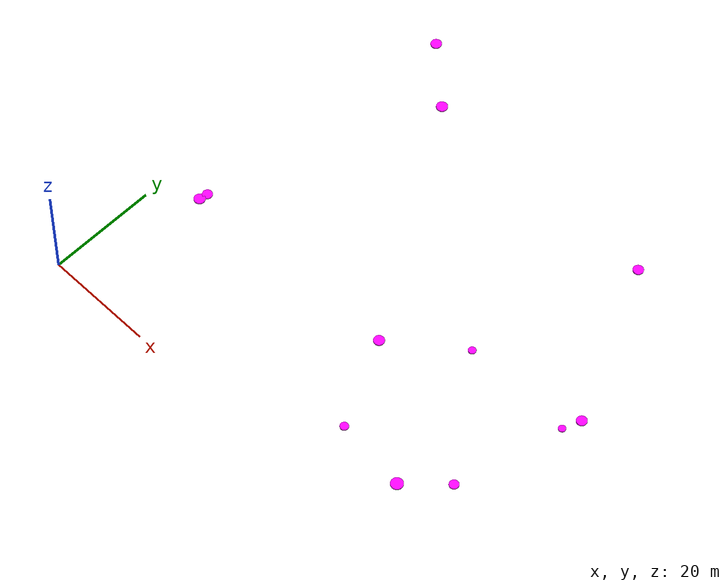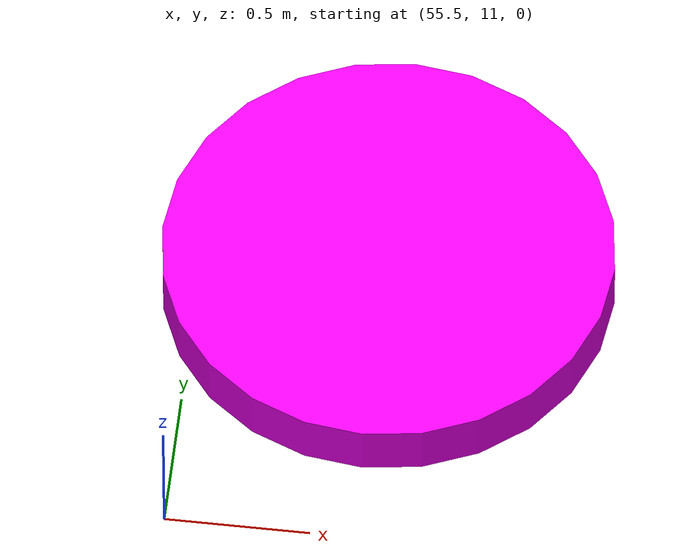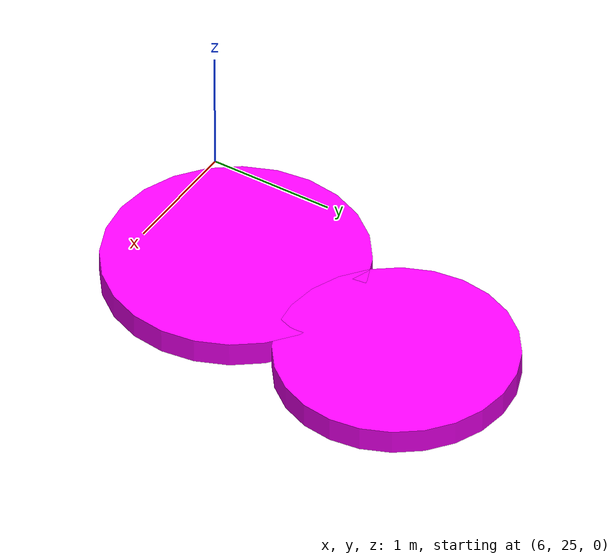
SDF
<?xml version="1.0"?>
<sdf version="1.9">
  <model name="weed_field">
    <static>true</static>
    <link name="weed_0">
      <pose>56.154 12.001 0.2 0 0 0</pose>
      <visual name="visual">
        <geometry>
          <cylinder>
            <radius>0.779</radius>
            <length>0.2</length>
          </cylinder>
        </geometry>
        <material>
          <ambient>1 0 1 1</ambient>
          <diffuse>1 0 1 1</diffuse>
          <emissive>1 0 1 1</emissive>
        </material>
      </visual>
    </link>
    <link name="weed_1">
      <pose>22.857 68.918 0.2 0 0 0</pose>
      <visual name="visual">
        <geometry>
          <cylinder>
            <radius>1.04</radius>
            <length>0.2</length>
          </cylinder>
        </geometry>
        <material>
          <ambient>1 0 1 1</ambient>
          <diffuse>1 0 1 1</diffuse>
          <emissive>1 0 1 1</emissive>
        </material>
      </visual>
    </link>
    <link name="weed_2">
      <pose>76.374 16.955 0.2 0 0 0</pose>
      <visual name="visual">
        <geometry>
          <cylinder>
            <radius>0.874</radius>
            <length>0.2</length>
          </cylinder>
        </geometry>
        <material>
          <ambient>1 0 1 1</ambient>
          <diffuse>1 0 1 1</diffuse>
          <emissive>1 0 1 1</emissive>
        </material>
      </visual>
    </link>
    <link name="weed_3">
      <pose>7.384 27.491 0.2 0 0 0</pose>
      <visual name="visual">
        <geometry>
          <cylinder>
            <radius>0.9285</radius>
            <length>0.2</length>
          </cylinder>
        </geometry>
        <material>
          <ambient>1 0 1 1</ambient>
          <diffuse>1 0 1 1</diffuse>
          <emissive>1 0 1 1</emissive>
        </material>
      </visual>
    </link>
    <link name="weed_4">
      <pose>7.123 25.907 0.2 0 0 0</pose>
      <visual name="visual">
        <geometry>
          <cylinder>
            <radius>1.0225</radius>
            <length>0.2</length>
          </cylinder>
        </geometry>
        <material>
          <ambient>1 0 1 1</ambient>
          <diffuse>1 0 1 1</diffuse>
          <emissive>1 0 1 1</emissive>
        </material>
      </visual>
    </link>
    <link name="weed_5">
      <pose>48.595 27.635 0.2 0 0 0</pose>
      <visual name="visual">
        <geometry>
          <cylinder>
            <radius>0.983</radius>
            <length>0.2</length>
          </cylinder>
        </geometry>
        <material>
          <ambient>1 0 1 1</ambient>
          <diffuse>1 0 1 1</diffuse>
          <emissive>1 0 1 1</emissive>
        </material>
      </visual>
    </link>
    <link name="weed_6">
      <pose>69.754 10.52 0.2 0 0 0</pose>
      <visual name="visual">
        <geometry>
          <cylinder>
            <radius>1.124</radius>
            <length>0.2</length>
          </cylinder>
        </geometry>
        <material>
          <ambient>1 0 1 1</ambient>
          <diffuse>1 0 1 1</diffuse>
          <emissive>1 0 1 1</emissive>
        </material>
      </visual>
    </link>
    <link name="weed_7">
      <pose>60.851 37.22 0.2 0 0 0</pose>
      <visual name="visual">
        <geometry>
          <cylinder>
            <radius>0.701</radius>
            <length>0.2</length>
          </cylinder>
        </geometry>
        <material>
          <ambient>1 0 1 1</ambient>
          <diffuse>1 0 1 1</diffuse>
          <emissive>1 0 1 1</emissive>
        </material>
      </visual>
    </link>
    <link name="weed_8">
      <pose>81.577 36.928 0.2 0 0 0</pose>
      <visual name="visual">
        <geometry>
          <cylinder>
            <radius>0.6605</radius>
            <length>0.2</length>
          </cylinder>
        </geometry>
        <material>
          <ambient>1 0 1 1</ambient>
          <diffuse>1 0 1 1</diffuse>
          <emissive>1 0 1 1</emissive>
        </material>
      </visual>
    </link>
    <link name="weed_9">
      <pose>12.737 77.8 0.2 0 0 0</pose>
      <visual name="visual">
        <geometry>
          <cylinder>
            <radius>0.9925</radius>
            <length>0.2</length>
          </cylinder>
        </geometry>
        <material>
          <ambient>1 0 1 1</ambient>
          <diffuse>1 0 1 1</diffuse>
          <emissive>1 0 1 1</emissive>
        </material>
      </visual>
    </link>
    <link name="weed_10">
      <pose>69.57 68.379 0.2 0 0 0</pose>
      <visual name="visual">
        <geometry>
          <cylinder>
            <radius>0.9485</radius>
            <length>0.2</length>
          </cylinder>
        </geometry>
        <material>
          <ambient>1 0 1 1</ambient>
          <diffuse>1 0 1 1</diffuse>
          <emissive>1 0 1 1</emissive>
        </material>
      </visual>
    </link>
    <link name="weed_11">
      <pose>82.849 40.283 0.2 0 0 0</pose>
      <visual name="visual">
        <geometry>
          <cylinder>
            <radius>0.959</radius>
            <length>0.2</length>
          </cylinder>
        </geometry>
        <material>
          <ambient>1 0 1 1</ambient>
          <diffuse>1 0 1 1</diffuse>
          <emissive>1 0 1 1</emissive>
        </material>
      </visual>
    </link>
  </model>
</sdf>
